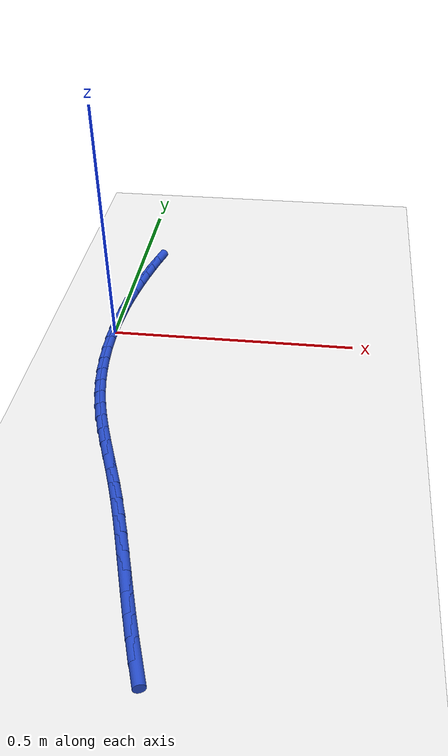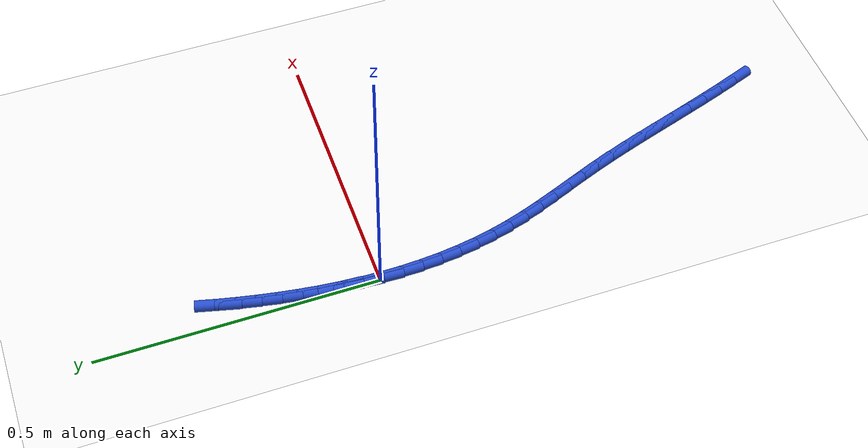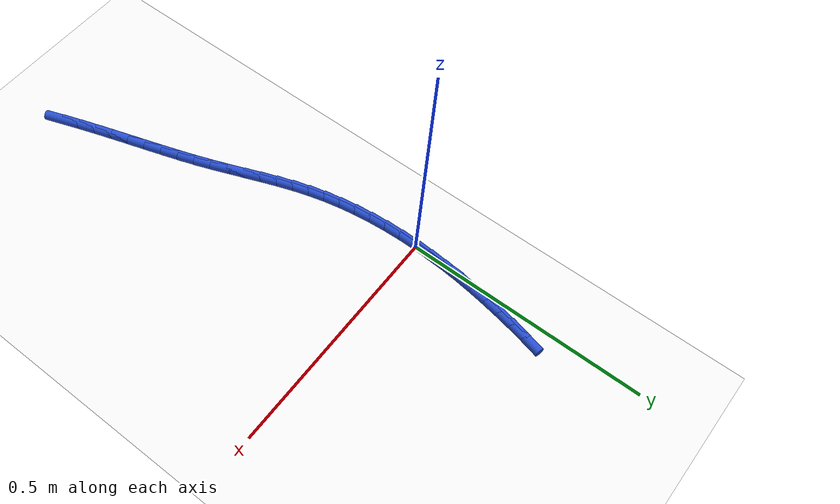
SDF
<sdf version="1.6">
 <world name="default">
  <model name="ground_plane">
   <static>1</static>
   <link name="link">
    <collision name="collision">
     <geometry><plane><normal>0 0 1</normal><size>100 100</size></plane></geometry>
     <surface><friction><ode><mu>100</mu><mu2>50</mu2></ode></friction></surface>
    </collision>
    <visual name="visual">
     <cast_shadows>0</cast_shadows>
     <geometry><plane><normal>0 0 1</normal><size>100 100</size></plane></geometry>
     <material>
      <script><uri>file://media/materials/scripts/gazebo.material</uri><name>Gazebo/WhiteGlow</name></script>
     </material>
    </visual>
   </link>
  </model>
  <model name="line">
   <link name="link_0">
    <pose>-1.9081958235744878e-17 -4.163336342344337e-17 0.01 0 1.57 1.5376184945663542</pose>
    <collision name="collision">
     <geometry><cylinder><radius>0.01</radius><length>0.08</length></cylinder></geometry>
    </collision>
    <visual name="visual">
     <material>
      <script><name>Gazebo/Blue</name><uri>file://media/materials/scripts/gazebo.material</uri></script>
     </material>
     <geometry><cylinder><radius>0.01</radius><length>0.08</length></cylinder></geometry>
    </visual>
   </link>
   <link name="link_1">
    <pose>0.0011723475374481982 0.03532230004374317 0.01 0 1.57 1.5041014518438005</pose>
    <collision name="collision">
     <geometry><cylinder><radius>0.01</radius><length>0.08</length></cylinder></geometry>
    </collision>
    <visual name="visual">
     <material>
      <script><name>Gazebo/Blue</name><uri>file://media/materials/scripts/gazebo.material</uri></script>
     </material>
     <geometry><cylinder><radius>0.01</radius><length>0.08</length></cylinder></geometry>
    </visual>
   </link>
   <link name="link_2">
    <pose>0.003524206129973034 0.07053295716829418 0.01 0 1.57 1.4732190608263767</pose>
    <collision name="collision">
     <geometry><cylinder><radius>0.01</radius><length>0.08</length></cylinder></geometry>
    </collision>
    <visual name="visual">
     <material>
      <script><name>Gazebo/Blue</name><uri>file://media/materials/scripts/gazebo.material</uri></script>
     </material>
     <geometry><cylinder><radius>0.01</radius><length>0.08</length></cylinder></geometry>
    </visual>
   </link>
   <link name="link_3">
    <pose>0.0069527387851088555 0.10555796344591252 0.01 0 1.57 1.4448357763890065</pose>
    <collision name="collision">
     <geometry><cylinder><radius>0.01</radius><length>0.08</length></cylinder></geometry>
    </collision>
    <visual name="visual">
     <material>
      <script><name>Gazebo/Blue</name><uri>file://media/materials/scripts/gazebo.material</uri></script>
     </material>
     <geometry><cylinder><radius>0.01</radius><length>0.08</length></cylinder></geometry>
    </visual>
   </link>
   <link name="link_4">
    <pose>0.011355108510390009 0.14032331094885758 0.01 0 1.57 1.4188226467934741</pose>
    <collision name="collision">
     <geometry><cylinder><radius>0.01</radius><length>0.08</length></cylinder></geometry>
    </collision>
    <visual name="visual">
     <material>
      <script><name>Gazebo/Blue</name><uri>file://media/materials/scripts/gazebo.material</uri></script>
     </material>
     <geometry><cylinder><radius>0.01</radius><length>0.08</length></cylinder></geometry>
    </visual>
   </link>
   <link name="link_5">
    <pose>0.016628478313350854 0.17475499174938872 0.01 0 1.57 1.3950612516940333</pose>
    <collision name="collision">
     <geometry><cylinder><radius>0.01</radius><length>0.08</length></cylinder></geometry>
    </collision>
    <visual name="visual">
     <material>
      <script><name>Gazebo/Blue</name><uri>file://media/materials/scripts/gazebo.material</uri></script>
     </material>
     <geometry><cylinder><radius>0.01</radius><length>0.08</length></cylinder></geometry>
    </visual>
   </link>
   <link name="link_6">
    <pose>0.022670011201525744 0.2087789979197655 0.01 0 1.57 1.3734035935768434</pose>
    <collision name="collision">
     <geometry><cylinder><radius>0.01</radius><length>0.08</length></cylinder></geometry>
    </collision>
    <visual name="visual">
     <material>
      <script><name>Gazebo/Blue</name><uri>file://media/materials/scripts/gazebo.material</uri></script>
     </material>
     <geometry><cylinder><radius>0.01</radius><length>0.08</length></cylinder></geometry>
    </visual>
   </link>
   <link name="link_7">
    <pose>0.029378520613141793 0.2423220380094555 0.01 0 1.57 1.3514736060687444</pose>
    <collision name="collision">
     <geometry><cylinder><radius>0.01</radius><length>0.08</length></cylinder></geometry>
    </collision>
    <visual name="visual">
     <material>
      <script><name>Gazebo/Blue</name><uri>file://media/materials/scripts/gazebo.material</uri></script>
     </material>
     <geometry><cylinder><radius>0.01</radius><length>0.08</length></cylinder></geometry>
    </visual>
   </link>
   <link name="link_8">
    <pose>0.036740479377144475 0.27534887485025 0.01 0 1.57 1.3258562833953265</pose>
    <collision name="collision">
     <geometry><cylinder><radius>0.01</radius><length>0.08</length></cylinder></geometry>
    </collision>
    <visual name="visual">
     <material>
      <script><name>Gazebo/Blue</name><uri>file://media/materials/scripts/gazebo.material</uri></script>
     </material>
     <geometry><cylinder><radius>0.01</radius><length>0.08</length></cylinder></geometry>
    </visual>
   </link>
   <link name="link_248">
    <pose>0.21025849724005558 -0.7638747616151592 0.01 0 1.57 -1.233022234839284</pose>
    <collision name="collision">
     <geometry><cylinder><radius>0.01</radius><length>0.08</length></cylinder></geometry>
    </collision>
    <visual name="visual">
     <material>
      <script><name>Gazebo/Blue</name><uri>file://media/materials/scripts/gazebo.material</uri></script>
     </material>
     <geometry><cylinder><radius>0.01</radius><length>0.08</length></cylinder></geometry>
    </visual>
   </link>
   <link name="link_249">
    <pose>0.19759514326786917 -0.7278209079729588 0.01 0 1.57 -1.2486713729840688</pose>
    <collision name="collision">
     <geometry><cylinder><radius>0.01</radius><length>0.08</length></cylinder></geometry>
    </collision>
    <visual name="visual">
     <material>
      <script><name>Gazebo/Blue</name><uri>file://media/materials/scripts/gazebo.material</uri></script>
     </material>
     <geometry><cylinder><radius>0.01</radius><length>0.08</length></cylinder></geometry>
    </visual>
   </link>
   <link name="link_250">
    <pose>0.18540736473375877 -0.6913031521490642 0.01 0 1.57 -1.2594304503068532</pose>
    <collision name="collision">
     <geometry><cylinder><radius>0.01</radius><length>0.08</length></cylinder></geometry>
    </collision>
    <visual name="visual">
     <material>
      <script><name>Gazebo/Blue</name><uri>file://media/materials/scripts/gazebo.material</uri></script>
     </material>
     <geometry><cylinder><radius>0.01</radius><length>0.08</length></cylinder></geometry>
    </visual>
   </link>
   <link name="link_251">
    <pose>0.1735664204412571 -0.6545110880474762 0.01 0 1.57 -1.2654710630988792</pose>
    <collision name="collision">
     <geometry><cylinder><radius>0.01</radius><length>0.08</length></cylinder></geometry>
    </collision>
    <visual name="visual">
     <material>
      <script><name>Gazebo/Blue</name><uri>file://media/materials/scripts/gazebo.material</uri></script>
     </material>
     <geometry><cylinder><radius>0.01</radius><length>0.08</length></cylinder></geometry>
    </visual>
   </link>
   <link name="link_252">
    <pose>0.16194356919389827 -0.6176343095721992 0.01 0 1.57 -1.266864280891786</pose>
    <collision name="collision">
     <geometry><cylinder><radius>0.01</radius><length>0.08</length></cylinder></geometry>
    </collision>
    <visual name="visual">
     <material>
      <script><name>Gazebo/Blue</name><uri>file://media/materials/scripts/gazebo.material</uri></script>
     </material>
     <geometry><cylinder><radius>0.01</radius><length>0.08</length></cylinder></geometry>
    </visual>
   </link>
   <link name="link_253">
    <pose>0.15041006979521504 -0.5808624106272344 0.01 0 1.57 -1.2635793291646515</pose>
    <collision name="collision">
     <geometry><cylinder><radius>0.01</radius><length>0.08</length></cylinder></geometry>
    </collision>
    <visual name="visual">
     <material>
      <script><name>Gazebo/Blue</name><uri>file://media/materials/scripts/gazebo.material</uri></script>
     </material>
     <geometry><cylinder><radius>0.01</radius><length>0.08</length></cylinder></geometry>
    </visual>
   </link>
   <link name="link_254">
    <pose>0.13883718104874154 -0.5443849851165866 0.01 0 1.57 -1.2554798070891002</pose>
    <collision name="collision">
     <geometry><cylinder><radius>0.01</radius><length>0.08</length></cylinder></geometry>
    </collision>
    <visual name="visual">
     <material>
      <script><name>Gazebo/Blue</name><uri>file://media/materials/scripts/gazebo.material</uri></script>
     </material>
     <geometry><cylinder><radius>0.01</radius><length>0.08</length></cylinder></geometry>
    </visual>
   </link>
   <link name="link_255">
    <pose>0.12709616175801056 -0.5083916269442563 0.01 0 1.57 -1.242317090277777</pose>
    <collision name="collision">
     <geometry><cylinder><radius>0.01</radius><length>0.08</length></cylinder></geometry>
    </collision>
    <visual name="visual">
     <material>
      <script><name>Gazebo/Blue</name><uri>file://media/materials/scripts/gazebo.material</uri></script>
     </material>
     <geometry><cylinder><radius>0.01</radius><length>0.08</length></cylinder></geometry>
    </visual>
   </link>
   <link name="link_256">
    <pose>0.11505827072655617 -0.4730719300142486 0.01 0 1.57 -1.223789798215598</pose>
    <collision name="collision">
     <geometry><cylinder><radius>0.01</radius><length>0.08</length></cylinder></geometry>
    </collision>
    <visual name="visual">
     <material>
      <script><name>Gazebo/Blue</name><uri>file://media/materials/scripts/gazebo.material</uri></script>
     </material>
     <geometry><cylinder><radius>0.01</radius><length>0.08</length></cylinder></geometry>
    </visual>
   </link>
   <link name="link_257">
    <pose>0.102596740184379 -0.43861353005784975 0.01 0 1.57 -1.204957059533651</pose>
    <collision name="collision">
     <geometry><cylinder><radius>0.01</radius><length>0.08</length></cylinder></geometry>
    </collision>
    <visual name="visual">
     <material>
      <script><name>Gazebo/Blue</name><uri>file://media/materials/scripts/gazebo.material</uri></script>
     </material>
     <geometry><cylinder><radius>0.01</radius><length>0.08</length></cylinder></geometry>
    </visual>
   </link>
   <link name="link_258">
    <pose>0.0897393533494638 -0.40505070643214475 0.01 0 1.57 -1.195415144434656</pose>
    <collision name="collision">
     <geometry><cylinder><radius>0.01</radius><length>0.08</length></cylinder></geometry>
    </collision>
    <visual name="visual">
     <material>
      <script><name>Gazebo/Blue</name><uri>file://media/materials/scripts/gazebo.material</uri></script>
     </material>
     <geometry><cylinder><radius>0.01</radius><length>0.08</length></cylinder></geometry>
    </visual>
   </link>
   <link name="link_259">
    <pose>0.07677692893140833 -0.37215673615573175 0.01 0 1.57 -1.1966732099413684</pose>
    <collision name="collision">
     <geometry><cylinder><radius>0.01</radius><length>0.08</length></cylinder></geometry>
    </collision>
    <visual name="visual">
     <material>
      <script><name>Gazebo/Blue</name><uri>file://media/materials/scripts/gazebo.material</uri></script>
     </material>
     <geometry><cylinder><radius>0.01</radius><length>0.08</length></cylinder></geometry>
    </visual>
   </link>
   <link name="link_260">
    <pose>0.06402589835690431 -0.33967948150558125 0.01 0 1.57 -1.2091540675887698</pose>
    <collision name="collision">
     <geometry><cylinder><radius>0.01</radius><length>0.08</length></cylinder></geometry>
    </collision>
    <visual name="visual">
     <material>
      <script><name>Gazebo/Blue</name><uri>file://media/materials/scripts/gazebo.material</uri></script>
     </material>
     <geometry><cylinder><radius>0.01</radius><length>0.08</length></cylinder></geometry>
    </visual>
   </link>
   <link name="link_261">
    <pose>0.05180269305264511 -0.30736680475866807 0.01 0 1.57 -1.2330532630473043</pose>
    <collision name="collision">
     <geometry><cylinder><radius>0.01</radius><length>0.08</length></cylinder></geometry>
    </collision>
    <visual name="visual">
     <material>
      <script><name>Gazebo/Blue</name><uri>file://media/materials/scripts/gazebo.material</uri></script>
     </material>
     <geometry><cylinder><radius>0.01</radius><length>0.08</length></cylinder></geometry>
    </visual>
   </link>
   <link name="link_262">
    <pose>0.04042374444532251 -0.2749665681919628 0.01 0 1.57 -1.2682723766359683</pose>
    <collision name="collision">
     <geometry><cylinder><radius>0.01</radius><length>0.08</length></cylinder></geometry>
    </collision>
    <visual name="visual">
     <material>
      <script><name>Gazebo/Blue</name><uri>file://media/materials/scripts/gazebo.material</uri></script>
     </material>
     <geometry><cylinder><radius>0.01</radius><length>0.08</length></cylinder></geometry>
    </visual>
   </link>
   <link name="link_263">
    <pose>0.030205483961629767 -0.24222663408244025 0.01 0 1.57 -1.3137399908166651</pose>
    <collision name="collision">
     <geometry><cylinder><radius>0.01</radius><length>0.08</length></cylinder></geometry>
    </collision>
    <visual name="visual">
     <material>
      <script><name>Gazebo/Blue</name><uri>file://media/materials/scripts/gazebo.material</uri></script>
     </material>
     <geometry><cylinder><radius>0.01</radius><length>0.08</length></cylinder></geometry>
    </visual>
   </link>
   <link name="link_264">
    <pose>0.02144781223028489 -0.20891129015721938 0.01 0 1.57 -1.3615969903111638</pose>
    <collision name="collision">
     <geometry><cylinder><radius>0.01</radius><length>0.08</length></cylinder></geometry>
    </collision>
    <visual name="visual">
     <material>
      <script><name>Gazebo/Blue</name><uri>file://media/materials/scripts/gazebo.material</uri></script>
     </material>
     <geometry><cylinder><radius>0.01</radius><length>0.08</length></cylinder></geometry>
    </visual>
   </link>
   <link name="link_265">
    <pose>0.014245786370743484 -0.17498836222155636 0.01 0 1.57 -1.4069979463291227</pose>
    <collision name="collision">
     <geometry><cylinder><radius>0.01</radius><length>0.08</length></cylinder></geometry>
    </collision>
    <visual name="visual">
     <material>
      <script><name>Gazebo/Blue</name><uri>file://media/materials/scripts/gazebo.material</uri></script>
     </material>
     <geometry><cylinder><radius>0.01</radius><length>0.08</length></cylinder></geometry>
    </visual>
   </link>
   <link name="link_266">
    <pose>0.008556028760001434 -0.14056322860325185 0.01 0 1.57 -1.4500893450262742</pose>
    <collision name="collision">
     <geometry><cylinder><radius>0.01</radius><length>0.08</length></cylinder></geometry>
    </collision>
    <visual name="visual">
     <material>
      <script><name>Gazebo/Blue</name><uri>file://media/materials/scripts/gazebo.material</uri></script>
     </material>
     <geometry><cylinder><radius>0.01</radius><length>0.08</length></cylinder></geometry>
    </visual>
   </link>
   <link name="link_267">
    <pose>0.004332555357807627 -0.1057438574371262 0.01 0 1.57 -1.4911157333318537</pose>
    <collision name="collision">
     <geometry><cylinder><radius>0.01</radius><length>0.08</length></cylinder></geometry>
    </collision>
    <visual name="visual">
     <material>
      <script><name>Gazebo/Blue</name><uri>file://media/materials/scripts/gazebo.material</uri></script>
     </material>
     <geometry><cylinder><radius>0.01</radius><length>0.08</length></cylinder></geometry>
    </visual>
   </link>
   <link name="link_268">
    <pose>0.001529382123910415 -0.07063821685799693 0.01 0 1.57 -1.5303224815684395</pose>
    <collision name="collision">
     <geometry><cylinder><radius>0.01</radius><length>0.08</length></cylinder></geometry>
    </collision>
    <visual name="visual">
     <material>
      <script><name>Gazebo/Blue</name><uri>file://media/materials/scripts/gazebo.material</uri></script>
     </material>
     <geometry><cylinder><radius>0.01</radius><length>0.08</length></cylinder></geometry>
    </visual>
   </link>
   <link name="link_269">
    <pose>0.00010052501805831804 -0.035354275000681334 0.01 0 1.57 -1.5679529720053411</pose>
    <collision name="collision">
     <geometry><cylinder><radius>0.01</radius><length>0.08</length></cylinder></geometry>
    </collision>
    <visual name="visual">
     <material>
      <script><name>Gazebo/Blue</name><uri>file://media/materials/scripts/gazebo.material</uri></script>
     </material>
     <geometry><cylinder><radius>0.01</radius><length>0.08</length></cylinder></geometry>
    </visual>
   </link>
   <link name="link_270">
    <pose>-2.5153490401663703e-17 -1.3877787807814457e-17 0.01 0 1.57 1.5373451778626448</pose>
    <collision name="collision">
     <geometry><cylinder><radius>0.01</radius><length>0.08</length></cylinder></geometry>
    </collision>
    <visual name="visual">
     <material>
      <script><name>Gazebo/Blue</name><uri>file://media/materials/scripts/gazebo.material</uri></script>
     </material>
     <geometry><cylinder><radius>0.01</radius><length>0.08</length></cylinder></geometry>
    </visual>
   </link>
   <link name="link_271">
    <pose>0.0011818230294839182 0.035316640009230786 0.01 0 1.57 1.5021492934278937</pose>
    <collision name="collision">
     <geometry><cylinder><radius>0.01</radius><length>0.08</length></cylinder></geometry>
    </collision>
    <visual name="visual">
     <material>
      <script><name>Gazebo/Blue</name><uri>file://media/materials/scripts/gazebo.material</uri></script>
     </material>
     <geometry><cylinder><radius>0.01</radius><length>0.08</length></cylinder></geometry>
    </visual>
   </link>
   <link name="link_272">
    <pose>0.0036000100662587145 0.07048767689219156 0.01 0 1.57 1.5197677644060148</pose>
    <collision name="collision">
     <geometry><cylinder><radius>0.01</radius><length>0.08</length></cylinder></geometry>
    </collision>
    <visual name="visual">
     <material>
      <script><name>Gazebo/Blue</name><uri>file://media/materials/scripts/gazebo.material</uri></script>
     </material>
     <geometry><cylinder><radius>0.01</radius><length>0.08</length></cylinder></geometry>
    </visual>
   </link>
  </model>
 </world>
</sdf>
